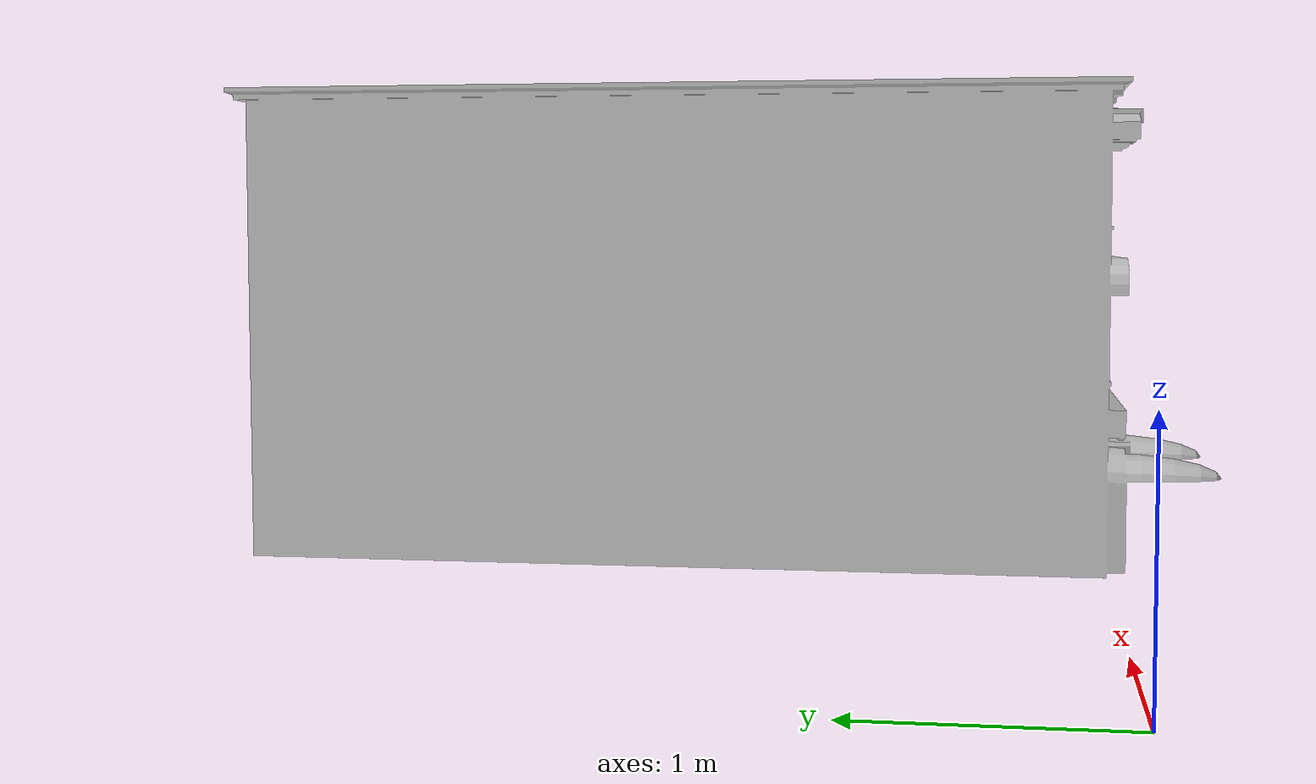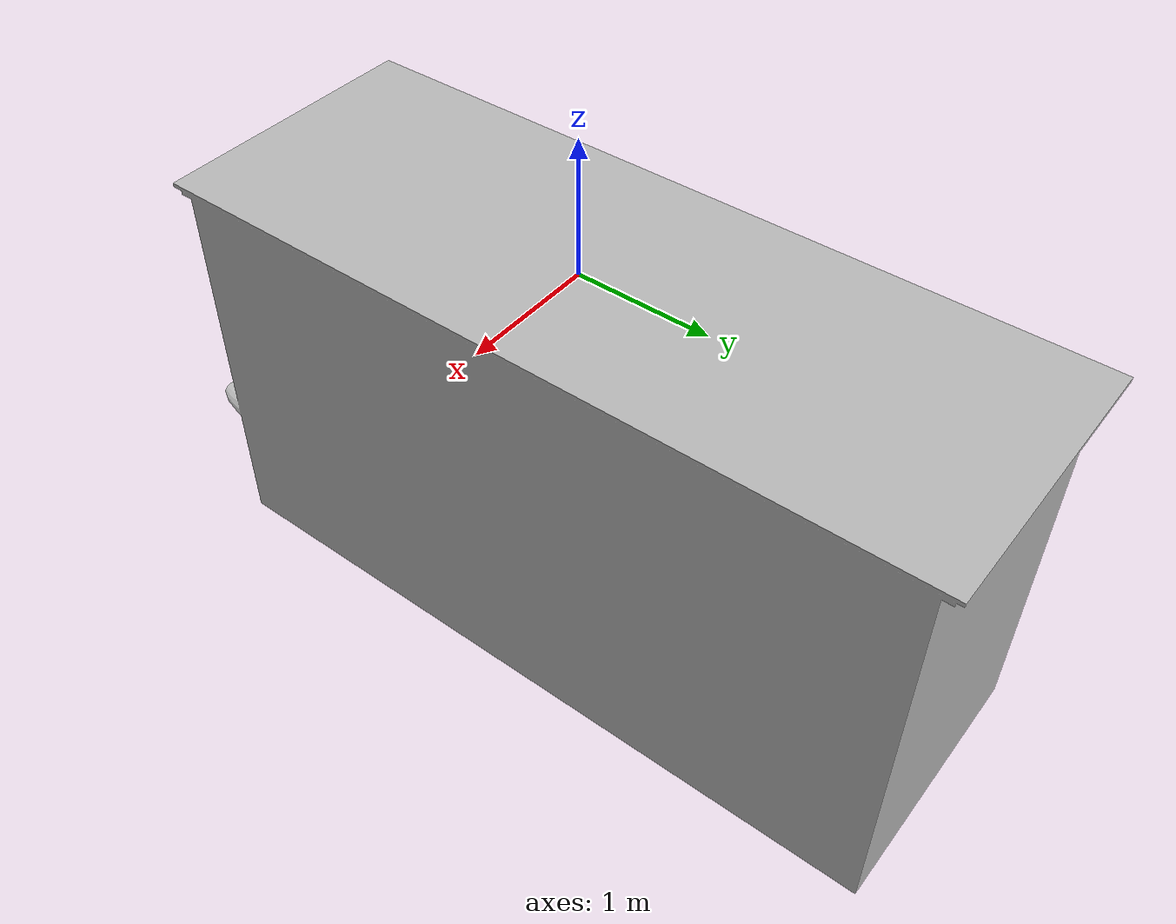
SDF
<?xml version="1.0" ?>
<sdf version="1.6">
  <model name="office_building_small">
    <pose>2.1 1.8 0.2 0 0 0</pose>
    <static>true</static>
    <link name="link">
      <collision name="collision">
        <pose>1.8 1.8 0.2 0 0 0</pose>
        <geometry>
          <box>
            <size>0.0006844012958 0.0005431646878 0.0013924872736</size>
          </box>
        </geometry>
      </collision>
      <visual name="visual">
        <geometry>
	        <mesh>
            <uri>model://office_building_small/meshes/office_building_small.dae</uri>
            <scale>0.1844012958 0.6431646878 0.13924872736</scale>
          </mesh>
        </geometry>
      </visual>
    </link>
  </model>
</sdf>
